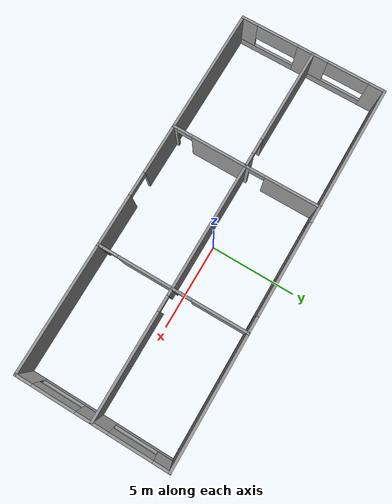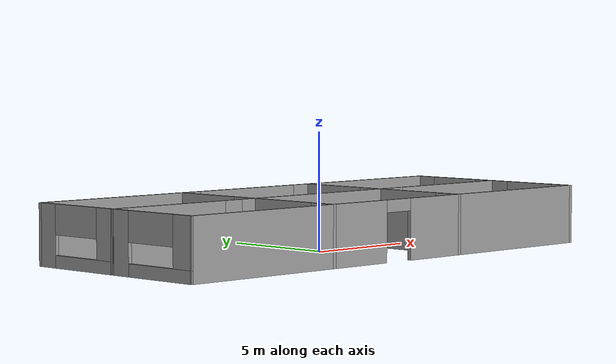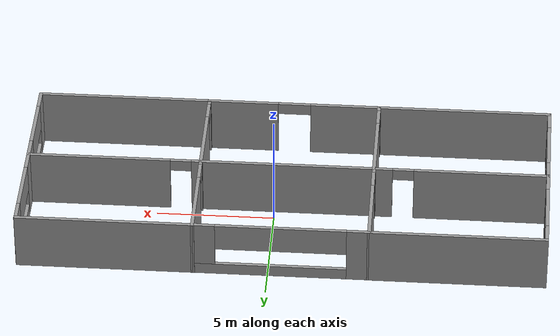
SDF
<?xml version='1.0'?>
<sdf version='1.7'>
  <model name='indoor_outdoor'>
    <pose>-0.530328 -0.539935 0 0 -0 0</pose>
    <link name='Wall_0'>
      <pose>-3.66967 -2.17507 0 0 -0 1.5708</pose>
      <visual name='Wall_0_Visual_0'>
        <pose>-2.09581 0 1.25 0 -0 0</pose>
        <geometry>
          <box>
            <size>0.308373 0.15 2.5</size>
          </box>
        </geometry>
        <material>
          <script>
            <uri>file://media/materials/scripts/gazebo.material</uri>
            <name>Gazebo/Grey</name>
          </script>
          <ambient>1 1 1 1</ambient>
        </material>
        <meta>
          <layer>0</layer>
        </meta>
      </visual>
      <collision name='Wall_0_Collision_0'>
        <geometry>
          <box>
            <size>0.308373 0.15 2.5</size>
          </box>
        </geometry>
        <pose>-2.09581 0 1.25 0 -0 0</pose>
      </collision>
      <visual name='Wall_0_Visual_1'>
        <pose>0.604187 0 1.25 0 -0 0</pose>
        <geometry>
          <box>
            <size>3.29163 0.15 2.5</size>
          </box>
        </geometry>
        <material>
          <script>
            <uri>file://media/materials/scripts/gazebo.material</uri>
            <name>Gazebo/Grey</name>
          </script>
          <ambient>1 1 1 1</ambient>
        </material>
        <meta>
          <layer>0</layer>
        </meta>
      </visual>
      <collision name='Wall_0_Collision_1'>
        <geometry>
          <box>
            <size>3.29163 0.15 2.5</size>
          </box>
        </geometry>
        <pose>0.604187 0 1.25 0 -0 0</pose>
      </collision>
      <visual name='Wall_0_Visual_2'>
        <pose>-1.49163 0 2.25 0 -0 0</pose>
        <geometry>
          <box>
            <size>0.9 0.15 0.5</size>
          </box>
        </geometry>
        <material>
          <script>
            <uri>file://media/materials/scripts/gazebo.material</uri>
            <name>Gazebo/Grey</name>
          </script>
          <ambient>1 1 1 1</ambient>
        </material>
        <meta>
          <layer>0</layer>
        </meta>
      </visual>
      <collision name='Wall_0_Collision_2'>
        <geometry>
          <box>
            <size>0.9 0.15 0.5</size>
          </box>
        </geometry>
        <pose>-1.49163 0 2.25 0 -0 0</pose>
      </collision>
    </link>
    <link name='Wall_1'>
      <collision name='Wall_1_Collision'>
        <geometry>
          <box>
            <size>7.5 0.15 2.5</size>
          </box>
        </geometry>
        <pose>0 0 1.25 0 -0 0</pose>
      </collision>
      <visual name='Wall_1_Visual'>
        <pose>0 0 1.25 0 -0 0</pose>
        <geometry>
          <box>
            <size>7.5 0.15 2.5</size>
          </box>
        </geometry>
        <material>
          <script>
            <uri>file://media/materials/scripts/gazebo.material</uri>
            <name>Gazebo/Grey</name>
          </script>
          <ambient>1 1 1 1</ambient>
        </material>
        <meta>
          <layer>0</layer>
        </meta>
      </visual>
      <pose>0.005328 -6.5e-05 0 0 -0 0</pose>
    </link>
    <link name='Wall_10'>
      <pose>3.67133 2.17494 0 0 -0 -1.56666</pose>
      <visual name='Wall_10_Visual_0'>
        <pose>-0.595223 0 1.25 0 -0 0</pose>
        <geometry>
          <box>
            <size>3.30959 0.15 2.5</size>
          </box>
        </geometry>
        <material>
          <script>
            <uri>file://media/materials/scripts/gazebo.material</uri>
            <name>Gazebo/Grey</name>
          </script>
          <ambient>1 1 1 1</ambient>
        </material>
        <meta>
          <layer>0</layer>
        </meta>
      </visual>
      <collision name='Wall_10_Collision_0'>
        <geometry>
          <box>
            <size>3.30959 0.15 2.5</size>
          </box>
        </geometry>
        <pose>-0.595223 0 1.25 0 -0 0</pose>
      </collision>
      <visual name='Wall_10_Visual_1'>
        <pose>2.1048 0 1.25 0 -0 0</pose>
        <geometry>
          <box>
            <size>0.290445 0.15 2.5</size>
          </box>
        </geometry>
        <material>
          <script>
            <uri>file://media/materials/scripts/gazebo.material</uri>
            <name>Gazebo/Grey</name>
          </script>
          <ambient>1 1 1 1</ambient>
        </material>
        <meta>
          <layer>0</layer>
        </meta>
      </visual>
      <collision name='Wall_10_Collision_1'>
        <geometry>
          <box>
            <size>0.290445 0.15 2.5</size>
          </box>
        </geometry>
        <pose>2.1048 0 1.25 0 -0 0</pose>
      </collision>
      <visual name='Wall_10_Visual_2'>
        <pose>1.50957 0 2.25 0 -0 0</pose>
        <geometry>
          <box>
            <size>0.9 0.15 0.5</size>
          </box>
        </geometry>
        <material>
          <script>
            <uri>file://media/materials/scripts/gazebo.material</uri>
            <name>Gazebo/Grey</name>
          </script>
          <ambient>1 1 1 1</ambient>
        </material>
        <meta>
          <layer>0</layer>
        </meta>
      </visual>
      <collision name='Wall_10_Collision_2'>
        <geometry>
          <box>
            <size>0.9 0.15 0.5</size>
          </box>
        </geometry>
        <pose>1.50957 0 2.25 0 -0 0</pose>
      </collision>
    </link>
    <link name='Wall_12'>
      <pose>7.35533 -6.5e-05 0 0 -0 0</pose>
      <visual name='Wall_12_Visual_0'>
        <pose>-3.50953 0 1.25 0 -0 0</pose>
        <geometry>
          <box>
            <size>0.48094 0.15 2.5</size>
          </box>
        </geometry>
        <material>
          <script>
            <uri>file://media/materials/scripts/gazebo.material</uri>
            <name>Gazebo/Grey</name>
          </script>
          <ambient>1 1 1 1</ambient>
        </material>
        <meta>
          <layer>0</layer>
        </meta>
      </visual>
      <collision name='Wall_12_Collision_0'>
        <geometry>
          <box>
            <size>0.48094 0.15 2.5</size>
          </box>
        </geometry>
        <pose>-3.50953 0 1.25 0 -0 0</pose>
      </collision>
      <visual name='Wall_12_Visual_1'>
        <pose>0.69047 0 1.25 0 -0 0</pose>
        <geometry>
          <box>
            <size>6.11906 0.15 2.5</size>
          </box>
        </geometry>
        <material>
          <script>
            <uri>file://media/materials/scripts/gazebo.material</uri>
            <name>Gazebo/Grey</name>
          </script>
          <ambient>1 1 1 1</ambient>
        </material>
        <meta>
          <layer>0</layer>
        </meta>
      </visual>
      <collision name='Wall_12_Collision_1'>
        <geometry>
          <box>
            <size>6.11906 0.15 2.5</size>
          </box>
        </geometry>
        <pose>0.69047 0 1.25 0 -0 0</pose>
      </collision>
      <visual name='Wall_12_Visual_2'>
        <pose>-2.81906 0 2.25 0 -0 0</pose>
        <geometry>
          <box>
            <size>0.9 0.15 0.5</size>
          </box>
        </geometry>
        <material>
          <script>
            <uri>file://media/materials/scripts/gazebo.material</uri>
            <name>Gazebo/Grey</name>
          </script>
          <ambient>1 1 1 1</ambient>
        </material>
        <meta>
          <layer>0</layer>
        </meta>
      </visual>
      <collision name='Wall_12_Collision_2'>
        <geometry>
          <box>
            <size>0.9 0.15 0.5</size>
          </box>
        </geometry>
        <pose>-2.81906 0 2.25 0 -0 0</pose>
      </collision>
    </link>
    <link name='Wall_13'>
      <pose>11.0303 2.17494 0 0 -0 1.5708</pose>
      <visual name='Wall_13_Visual_0'>
        <pose>-1.74891 0 1.25 0 -0 0</pose>
        <geometry>
          <box>
            <size>1.00217 0.15 2.5</size>
          </box>
        </geometry>
        <material>
          <script>
            <uri>file://media/materials/scripts/gazebo.material</uri>
            <name>Gazebo/Grey</name>
          </script>
          <ambient>1 1 1 1</ambient>
        </material>
        <meta>
          <layer>0</layer>
        </meta>
      </visual>
      <collision name='Wall_13_Collision_0'>
        <geometry>
          <box>
            <size>1.00217 0.15 2.5</size>
          </box>
        </geometry>
        <pose>-1.74891 0 1.25 0 -0 0</pose>
      </collision>
      <visual name='Wall_13_Visual_1'>
        <pose>0.501087 0 0.25 0 -0 0</pose>
        <geometry>
          <box>
            <size>3.49783 0.15 0.5</size>
          </box>
        </geometry>
        <material>
          <script>
            <uri>file://media/materials/scripts/gazebo.material</uri>
            <name>Gazebo/Grey</name>
          </script>
          <ambient>1 1 1 1</ambient>
        </material>
        <meta>
          <layer>0</layer>
        </meta>
      </visual>
      <collision name='Wall_13_Collision_1'>
        <geometry>
          <box>
            <size>3.49783 0.15 0.5</size>
          </box>
        </geometry>
        <pose>0.501087 0 0.25 0 -0 0</pose>
      </collision>
      <visual name='Wall_13_Visual_2'>
        <pose>1.74331 0 1.5 0 -0 0</pose>
        <geometry>
          <box>
            <size>1.01339 0.15 2</size>
          </box>
        </geometry>
        <material>
          <script>
            <uri>file://media/materials/scripts/gazebo.material</uri>
            <name>Gazebo/Grey</name>
          </script>
          <ambient>1 1 1 1</ambient>
        </material>
        <meta>
          <layer>0</layer>
        </meta>
      </visual>
      <collision name='Wall_13_Collision_2'>
        <geometry>
          <box>
            <size>1.01339 0.15 2</size>
          </box>
        </geometry>
        <pose>1.74331 0 1.5 0 -0 0</pose>
      </collision>
      <visual name='Wall_13_Visual_3'>
        <pose>-0.005607 0 1.9 0 -0 0</pose>
        <geometry>
          <box>
            <size>2.48444 0.15 1.2</size>
          </box>
        </geometry>
        <material>
          <script>
            <uri>file://media/materials/scripts/gazebo.material</uri>
            <name>Gazebo/Grey</name>
          </script>
          <ambient>1 1 1 1</ambient>
        </material>
        <meta>
          <layer>0</layer>
        </meta>
      </visual>
      <collision name='Wall_13_Collision_3'>
        <geometry>
          <box>
            <size>2.48444 0.15 1.2</size>
          </box>
        </geometry>
        <pose>-0.005607 0 1.9 0 -0 0</pose>
      </collision>
    </link>
    <link name='Wall_14'>
      <collision name='Wall_14_Collision'>
        <geometry>
          <box>
            <size>7.51805 0.15 2.5</size>
          </box>
        </geometry>
        <pose>0 0 1.25 0 -0 0</pose>
      </collision>
      <visual name='Wall_14_Visual'>
        <pose>0 0 1.25 0 -0 0</pose>
        <geometry>
          <box>
            <size>7.51805 0.15 2.5</size>
          </box>
        </geometry>
        <material>
          <script>
            <uri>file://media/materials/scripts/gazebo.material</uri>
            <name>Gazebo/Grey</name>
          </script>
          <ambient>1 1 1 1</ambient>
        </material>
        <meta>
          <layer>0</layer>
        </meta>
      </visual>
      <pose>7.34633 4.34994 0 0 -0 -3.14159</pose>
    </link>
    <link name='Wall_16'>
      <collision name='Wall_16_Collision'>
        <geometry>
          <box>
            <size>7.49252 0.15 2.5</size>
          </box>
        </geometry>
        <pose>0 0 1.25 0 -0 0</pose>
      </collision>
      <visual name='Wall_16_Visual'>
        <pose>0 0 1.25 0 -0 0</pose>
        <geometry>
          <box>
            <size>7.49252 0.15 2.5</size>
          </box>
        </geometry>
        <material>
          <script>
            <uri>file://media/materials/scripts/gazebo.material</uri>
            <name>Gazebo/Grey</name>
          </script>
          <ambient>1 1 1 1</ambient>
        </material>
        <meta>
          <layer>0</layer>
        </meta>
      </visual>
      <pose>-7.35891 4.34994 0 0 -0 3.14159</pose>
    </link>
    <link name='Wall_18'>
      <pose>-11.0301 2.17494 0 0 -0 -1.5708</pose>
      <visual name='Wall_18_Visual_0'>
        <pose>-1.73743 0 1.25 0 -0 0</pose>
        <geometry>
          <box>
            <size>1.00419 0.15 2.5</size>
          </box>
        </geometry>
        <material>
          <script>
            <uri>file://media/materials/scripts/gazebo.material</uri>
            <name>Gazebo/Grey</name>
          </script>
          <ambient>1 1 1 1</ambient>
        </material>
        <meta>
          <layer>0</layer>
        </meta>
      </visual>
      <collision name='Wall_18_Collision_0'>
        <geometry>
          <box>
            <size>1.00419 0.15 2.5</size>
          </box>
        </geometry>
        <pose>-1.73743 0 1.25 0 -0 0</pose>
      </collision>
      <visual name='Wall_18_Visual_1'>
        <pose>0.502097 0 0.25 0 -0 0</pose>
        <geometry>
          <box>
            <size>3.47487 0.15 0.5</size>
          </box>
        </geometry>
        <material>
          <script>
            <uri>file://media/materials/scripts/gazebo.material</uri>
            <name>Gazebo/Grey</name>
          </script>
          <ambient>1 1 1 1</ambient>
        </material>
        <meta>
          <layer>0</layer>
        </meta>
      </visual>
      <collision name='Wall_18_Collision_1'>
        <geometry>
          <box>
            <size>3.47487 0.15 0.5</size>
          </box>
        </geometry>
        <pose>0.502097 0 0.25 0 -0 0</pose>
      </collision>
      <visual name='Wall_18_Visual_2'>
        <pose>1.7396 0 1.5 0 -0 0</pose>
        <geometry>
          <box>
            <size>0.999862 0.15 2</size>
          </box>
        </geometry>
        <material>
          <script>
            <uri>file://media/materials/scripts/gazebo.material</uri>
            <name>Gazebo/Grey</name>
          </script>
          <ambient>1 1 1 1</ambient>
        </material>
        <meta>
          <layer>0</layer>
        </meta>
      </visual>
      <collision name='Wall_18_Collision_2'>
        <geometry>
          <box>
            <size>0.999862 0.15 2</size>
          </box>
        </geometry>
        <pose>1.7396 0 1.5 0 -0 0</pose>
      </collision>
      <visual name='Wall_18_Visual_3'>
        <pose>0.002166 0 1.9 0 -0 0</pose>
        <geometry>
          <box>
            <size>2.47501 0.15 1.2</size>
          </box>
        </geometry>
        <material>
          <script>
            <uri>file://media/materials/scripts/gazebo.material</uri>
            <name>Gazebo/Grey</name>
          </script>
          <ambient>1 1 1 1</ambient>
        </material>
        <meta>
          <layer>0</layer>
        </meta>
      </visual>
      <collision name='Wall_18_Collision_3'>
        <geometry>
          <box>
            <size>2.47501 0.15 1.2</size>
          </box>
        </geometry>
        <pose>0.002166 0 1.9 0 -0 0</pose>
      </collision>
    </link>
    <link name='Wall_19'>
      <pose>-7.34467 0.010404 0 0 -0 -0.002841</pose>
      <visual name='Wall_19_Visual_0'>
        <pose>-0.887491 0 1.25 0 -0 0</pose>
        <geometry>
          <box>
            <size>5.74599 0.15 2.5</size>
          </box>
        </geometry>
        <material>
          <script>
            <uri>file://media/materials/scripts/gazebo.material</uri>
            <name>Gazebo/Grey</name>
          </script>
          <ambient>1 1 1 1</ambient>
        </material>
        <meta>
          <layer>0</layer>
        </meta>
      </visual>
      <collision name='Wall_19_Collision_0'>
        <geometry>
          <box>
            <size>5.74599 0.15 2.5</size>
          </box>
        </geometry>
        <pose>-0.887491 0 1.25 0 -0 0</pose>
      </collision>
      <visual name='Wall_19_Visual_1'>
        <pose>3.32299 0 1.25 0 -0 0</pose>
        <geometry>
          <box>
            <size>0.874982 0.15 2.5</size>
          </box>
        </geometry>
        <material>
          <script>
            <uri>file://media/materials/scripts/gazebo.material</uri>
            <name>Gazebo/Grey</name>
          </script>
          <ambient>1 1 1 1</ambient>
        </material>
        <meta>
          <layer>0</layer>
        </meta>
      </visual>
      <collision name='Wall_19_Collision_1'>
        <geometry>
          <box>
            <size>0.874982 0.15 2.5</size>
          </box>
        </geometry>
        <pose>3.32299 0 1.25 0 -0 0</pose>
      </collision>
      <visual name='Wall_19_Visual_2'>
        <pose>2.4355 0 2.25 0 -0 0</pose>
        <geometry>
          <box>
            <size>0.9 0.15 0.5</size>
          </box>
        </geometry>
        <material>
          <script>
            <uri>file://media/materials/scripts/gazebo.material</uri>
            <name>Gazebo/Grey</name>
          </script>
          <ambient>1 1 1 1</ambient>
        </material>
        <meta>
          <layer>0</layer>
        </meta>
      </visual>
      <collision name='Wall_19_Collision_2'>
        <geometry>
          <box>
            <size>0.9 0.15 0.5</size>
          </box>
        </geometry>
        <pose>2.4355 0 2.25 0 -0 0</pose>
      </collision>
    </link>
    <link name='Wall_2'>
      <pose>3.68033 -2.17507 0 0 -0 -1.5708</pose>
      <visual name='Wall_2_Visual_0'>
        <pose>-0.621941 0 1.25 0 -0 0</pose>
        <geometry>
          <box>
            <size>3.25612 0.15 2.5</size>
          </box>
        </geometry>
        <material>
          <script>
            <uri>file://media/materials/scripts/gazebo.material</uri>
            <name>Gazebo/Grey</name>
          </script>
          <ambient>1 1 1 1</ambient>
        </material>
        <meta>
          <layer>0</layer>
        </meta>
      </visual>
      <collision name='Wall_2_Collision_0'>
        <geometry>
          <box>
            <size>3.25612 0.15 2.5</size>
          </box>
        </geometry>
        <pose>-0.621941 0 1.25 0 -0 0</pose>
      </collision>
      <visual name='Wall_2_Visual_1'>
        <pose>2.07806 0 1.25 0 -0 0</pose>
        <geometry>
          <box>
            <size>0.343882 0.15 2.5</size>
          </box>
        </geometry>
        <material>
          <script>
            <uri>file://media/materials/scripts/gazebo.material</uri>
            <name>Gazebo/Grey</name>
          </script>
          <ambient>1 1 1 1</ambient>
        </material>
        <meta>
          <layer>0</layer>
        </meta>
      </visual>
      <collision name='Wall_2_Collision_1'>
        <geometry>
          <box>
            <size>0.343882 0.15 2.5</size>
          </box>
        </geometry>
        <pose>2.07806 0 1.25 0 -0 0</pose>
      </collision>
      <visual name='Wall_2_Visual_2'>
        <pose>1.45612 0 2.25 0 -0 0</pose>
        <geometry>
          <box>
            <size>0.9 0.15 0.5</size>
          </box>
        </geometry>
        <material>
          <script>
            <uri>file://media/materials/scripts/gazebo.material</uri>
            <name>Gazebo/Grey</name>
          </script>
          <ambient>1 1 1 1</ambient>
        </material>
        <meta>
          <layer>0</layer>
        </meta>
      </visual>
      <collision name='Wall_2_Collision_2'>
        <geometry>
          <box>
            <size>0.9 0.15 0.5</size>
          </box>
        </geometry>
        <pose>1.45612 0 2.25 0 -0 0</pose>
      </collision>
    </link>
    <link name='Wall_21'>
      <pose>-11.0249 -2.1646 0 0 -0 -1.5684</pose>
      <visual name='Wall_21_Visual_0'>
        <pose>-1.75213 0 1.25 0 -0 0</pose>
        <geometry>
          <box>
            <size>1.01669 0.15 2.5</size>
          </box>
        </geometry>
        <material>
          <script>
            <uri>file://media/materials/scripts/gazebo.material</uri>
            <name>Gazebo/Grey</name>
          </script>
          <ambient>1 1 1 1</ambient>
        </material>
        <meta>
          <layer>0</layer>
        </meta>
      </visual>
      <collision name='Wall_21_Collision_0'>
        <geometry>
          <box>
            <size>1.01669 0.15 2.5</size>
          </box>
        </geometry>
        <pose>-1.75213 0 1.25 0 -0 0</pose>
      </collision>
      <visual name='Wall_21_Visual_1'>
        <pose>0.508344 0 0.25 0 -0 0</pose>
        <geometry>
          <box>
            <size>3.50426 0.15 0.5</size>
          </box>
        </geometry>
        <material>
          <script>
            <uri>file://media/materials/scripts/gazebo.material</uri>
            <name>Gazebo/Grey</name>
          </script>
          <ambient>1 1 1 1</ambient>
        </material>
        <meta>
          <layer>0</layer>
        </meta>
      </visual>
      <collision name='Wall_21_Collision_1'>
        <geometry>
          <box>
            <size>3.50426 0.15 0.5</size>
          </box>
        </geometry>
        <pose>0.508344 0 0.25 0 -0 0</pose>
      </collision>
      <visual name='Wall_21_Visual_2'>
        <pose>1.7522 0 1.5 0 -0 0</pose>
        <geometry>
          <box>
            <size>1.01656 0.15 2</size>
          </box>
        </geometry>
        <material>
          <script>
            <uri>file://media/materials/scripts/gazebo.material</uri>
            <name>Gazebo/Grey</name>
          </script>
          <ambient>1 1 1 1</ambient>
        </material>
        <meta>
          <layer>0</layer>
        </meta>
      </visual>
      <collision name='Wall_21_Collision_2'>
        <geometry>
          <box>
            <size>1.01656 0.15 2</size>
          </box>
        </geometry>
        <pose>1.7522 0 1.5 0 -0 0</pose>
      </collision>
      <visual name='Wall_21_Visual_3'>
        <pose>6.5e-05 0 1.9 0 -0 0</pose>
        <geometry>
          <box>
            <size>2.4877 0.15 1.2</size>
          </box>
        </geometry>
        <material>
          <script>
            <uri>file://media/materials/scripts/gazebo.material</uri>
            <name>Gazebo/Grey</name>
          </script>
          <ambient>1 1 1 1</ambient>
        </material>
        <meta>
          <layer>0</layer>
        </meta>
      </visual>
      <collision name='Wall_21_Collision_3'>
        <geometry>
          <box>
            <size>2.4877 0.15 1.2</size>
          </box>
        </geometry>
        <pose>6.5e-05 0 1.9 0 -0 0</pose>
      </collision>
    </link>
    <link name='Wall_22'>
      <collision name='Wall_22_Collision'>
        <geometry>
          <box>
            <size>7.5 0.15 2.5</size>
          </box>
        </geometry>
        <pose>0 0 1.25 0 -0 0</pose>
      </collision>
      <visual name='Wall_22_Visual'>
        <pose>0 0 1.25 0 -0 0</pose>
        <geometry>
          <box>
            <size>7.5 0.15 2.5</size>
          </box>
        </geometry>
        <material>
          <script>
            <uri>file://media/materials/scripts/gazebo.material</uri>
            <name>Gazebo/Grey</name>
          </script>
          <ambient>1 1 1 1</ambient>
        </material>
        <meta>
          <layer>0</layer>
        </meta>
      </visual>
      <pose>-7.34467 -4.35006 0 0 -0 0</pose>
    </link>
    <link name='Wall_24'>
      <collision name='Wall_24_Collision'>
        <geometry>
          <box>
            <size>7.5 0.15 2.5</size>
          </box>
        </geometry>
        <pose>0 0 1.25 0 -0 0</pose>
      </collision>
      <visual name='Wall_24_Visual'>
        <pose>0 0 1.25 0 -0 0</pose>
        <geometry>
          <box>
            <size>7.5 0.15 2.5</size>
          </box>
        </geometry>
        <material>
          <script>
            <uri>file://media/materials/scripts/gazebo.material</uri>
            <name>Gazebo/Grey</name>
          </script>
          <ambient>1 1 1 1</ambient>
        </material>
        <meta>
          <layer>0</layer>
        </meta>
      </visual>
      <pose>7.35533 -4.35006 0 0 -0 0</pose>
    </link>
    <link name='Wall_25'>
      <pose>11.0303 -2.17507 0 0 -0 1.5708</pose>
      <visual name='Wall_25_Visual_0'>
        <pose>-1.74696 0 1.25 0 -0 0</pose>
        <geometry>
          <box>
            <size>1.00608 0.15 2.5</size>
          </box>
        </geometry>
        <material>
          <script>
            <uri>file://media/materials/scripts/gazebo.material</uri>
            <name>Gazebo/Grey</name>
          </script>
          <ambient>1 1 1 1</ambient>
        </material>
        <meta>
          <layer>0</layer>
        </meta>
      </visual>
      <collision name='Wall_25_Collision_0'>
        <geometry>
          <box>
            <size>1.00608 0.15 2.5</size>
          </box>
        </geometry>
        <pose>-1.74696 0 1.25 0 -0 0</pose>
      </collision>
      <visual name='Wall_25_Visual_1'>
        <pose>0.503042 0 0.25 0 -0 0</pose>
        <geometry>
          <box>
            <size>3.49392 0.15 0.5</size>
          </box>
        </geometry>
        <material>
          <script>
            <uri>file://media/materials/scripts/gazebo.material</uri>
            <name>Gazebo/Grey</name>
          </script>
          <ambient>1 1 1 1</ambient>
        </material>
        <meta>
          <layer>0</layer>
        </meta>
      </visual>
      <collision name='Wall_25_Collision_1'>
        <geometry>
          <box>
            <size>3.49392 0.15 0.5</size>
          </box>
        </geometry>
        <pose>0.503042 0 0.25 0 -0 0</pose>
      </collision>
      <visual name='Wall_25_Visual_2'>
        <pose>1.74689 0 1.5 0 -0 0</pose>
        <geometry>
          <box>
            <size>1.00621 0.15 2</size>
          </box>
        </geometry>
        <material>
          <script>
            <uri>file://media/materials/scripts/gazebo.material</uri>
            <name>Gazebo/Grey</name>
          </script>
          <ambient>1 1 1 1</ambient>
        </material>
        <meta>
          <layer>0</layer>
        </meta>
      </visual>
      <collision name='Wall_25_Collision_2'>
        <geometry>
          <box>
            <size>1.00621 0.15 2</size>
          </box>
        </geometry>
        <pose>1.74689 0 1.5 0 -0 0</pose>
      </collision>
      <visual name='Wall_25_Visual_3'>
        <pose>-6.5e-05 0 1.9 0 -0 0</pose>
        <geometry>
          <box>
            <size>2.4877 0.15 1.2</size>
          </box>
        </geometry>
        <material>
          <script>
            <uri>file://media/materials/scripts/gazebo.material</uri>
            <name>Gazebo/Grey</name>
          </script>
          <ambient>1 1 1 1</ambient>
        </material>
        <meta>
          <layer>0</layer>
        </meta>
      </visual>
      <collision name='Wall_25_Collision_3'>
        <geometry>
          <box>
            <size>2.4877 0.15 1.2</size>
          </box>
        </geometry>
        <pose>-6.5e-05 0 1.9 0 -0 0</pose>
      </collision>
    </link>
    <link name='Wall_27'>
      <pose>0.005328 -4.35006 0 0 -0 0</pose>
      <visual name='Wall_27_Visual_0'>
        <pose>-2.22984 0 1.25 0 -0 0</pose>
        <geometry>
          <box>
            <size>3.04032 0.15 2.5</size>
          </box>
        </geometry>
        <material>
          <script>
            <uri>file://media/materials/scripts/gazebo.material</uri>
            <name>Gazebo/Grey</name>
          </script>
          <ambient>1 1 1 1</ambient>
        </material>
        <meta>
          <layer>0</layer>
        </meta>
      </visual>
      <collision name='Wall_27_Collision_0'>
        <geometry>
          <box>
            <size>3.04032 0.15 2.5</size>
          </box>
        </geometry>
        <pose>-2.22984 0 1.25 0 -0 0</pose>
      </collision>
      <visual name='Wall_27_Visual_1'>
        <pose>2.21718 0 1.25 0 -0 0</pose>
        <geometry>
          <box>
            <size>3.06564 0.15 2.5</size>
          </box>
        </geometry>
        <material>
          <script>
            <uri>file://media/materials/scripts/gazebo.material</uri>
            <name>Gazebo/Grey</name>
          </script>
          <ambient>1 1 1 1</ambient>
        </material>
        <meta>
          <layer>0</layer>
        </meta>
      </visual>
      <collision name='Wall_27_Collision_1'>
        <geometry>
          <box>
            <size>3.06564 0.15 2.5</size>
          </box>
        </geometry>
        <pose>2.21718 0 1.25 0 -0 0</pose>
      </collision>
      <visual name='Wall_27_Visual_2'>
        <pose>-0.012663 0 2.25 0 -0 0</pose>
        <geometry>
          <box>
            <size>1.39404 0.15 0.5</size>
          </box>
        </geometry>
        <material>
          <script>
            <uri>file://media/materials/scripts/gazebo.material</uri>
            <name>Gazebo/Grey</name>
          </script>
          <ambient>1 1 1 1</ambient>
        </material>
        <meta>
          <layer>0</layer>
        </meta>
      </visual>
      <collision name='Wall_27_Collision_2'>
        <geometry>
          <box>
            <size>1.39404 0.15 0.5</size>
          </box>
        </geometry>
        <pose>-0.012663 0 2.25 0 -0 0</pose>
      </collision>
    </link>
    <link name='Wall_8'>
      <pose>-3.67867 2.17494 0 0 -0 1.57493</pose>
      <visual name='Wall_8_Visual_0'>
        <pose>-2.08715 0 1.25 0 -0 0</pose>
        <geometry>
          <box>
            <size>0.325735 0.15 2.5</size>
          </box>
        </geometry>
        <material>
          <script>
            <uri>file://media/materials/scripts/gazebo.material</uri>
            <name>Gazebo/Grey</name>
          </script>
          <ambient>1 1 1 1</ambient>
        </material>
        <meta>
          <layer>0</layer>
        </meta>
      </visual>
      <collision name='Wall_8_Collision_0'>
        <geometry>
          <box>
            <size>0.325735 0.15 2.5</size>
          </box>
        </geometry>
        <pose>-2.08715 0 1.25 0 -0 0</pose>
      </collision>
      <visual name='Wall_8_Visual_1'>
        <pose>0.612867 0 1.25 0 -0 0</pose>
        <geometry>
          <box>
            <size>3.2743 0.15 2.5</size>
          </box>
        </geometry>
        <material>
          <script>
            <uri>file://media/materials/scripts/gazebo.material</uri>
            <name>Gazebo/Grey</name>
          </script>
          <ambient>1 1 1 1</ambient>
        </material>
        <meta>
          <layer>0</layer>
        </meta>
      </visual>
      <collision name='Wall_8_Collision_1'>
        <geometry>
          <box>
            <size>3.2743 0.15 2.5</size>
          </box>
        </geometry>
        <pose>0.612867 0 1.25 0 -0 0</pose>
      </collision>
      <visual name='Wall_8_Visual_2'>
        <pose>-1.47428 0 2.25 0 -0 0</pose>
        <geometry>
          <box>
            <size>0.9 0.15 0.5</size>
          </box>
        </geometry>
        <material>
          <script>
            <uri>file://media/materials/scripts/gazebo.material</uri>
            <name>Gazebo/Grey</name>
          </script>
          <ambient>1 1 1 1</ambient>
        </material>
        <meta>
          <layer>0</layer>
        </meta>
      </visual>
      <collision name='Wall_8_Collision_2'>
        <geometry>
          <box>
            <size>0.9 0.15 0.5</size>
          </box>
        </geometry>
        <pose>-1.47428 0 2.25 0 -0 0</pose>
      </collision>
    </link>
    <link name='Wall_9'>
      <pose>-0.012673 4.34093 0 0 -0 0</pose>
      <visual name='Wall_9_Visual_0'>
        <pose>-3.24656 0 1.25 0 -0 0</pose>
        <geometry>
          <box>
            <size>1.00688 0.15 2.5</size>
          </box>
        </geometry>
        <material>
          <script>
            <uri>file://media/materials/scripts/gazebo.material</uri>
            <name>Gazebo/Grey</name>
          </script>
          <ambient>1 1 1 1</ambient>
        </material>
        <meta>
          <layer>0</layer>
        </meta>
      </visual>
      <collision name='Wall_9_Collision_0'>
        <geometry>
          <box>
            <size>1.00688 0.15 2.5</size>
          </box>
        </geometry>
        <pose>-3.24656 0 1.25 0 -0 0</pose>
      </collision>
      <visual name='Wall_9_Visual_1'>
        <pose>0.503438 0 0.25 0 -0 0</pose>
        <geometry>
          <box>
            <size>6.49312 0.15 0.5</size>
          </box>
        </geometry>
        <material>
          <script>
            <uri>file://media/materials/scripts/gazebo.material</uri>
            <name>Gazebo/Grey</name>
          </script>
          <ambient>1 1 1 1</ambient>
        </material>
        <meta>
          <layer>0</layer>
        </meta>
      </visual>
      <collision name='Wall_9_Collision_1'>
        <geometry>
          <box>
            <size>6.49312 0.15 0.5</size>
          </box>
        </geometry>
        <pose>0.503438 0 0.25 0 -0 0</pose>
      </collision>
      <visual name='Wall_9_Visual_2'>
        <pose>3.24364 0 1.5 0 -0 0</pose>
        <geometry>
          <box>
            <size>1.01272 0.15 2</size>
          </box>
        </geometry>
        <material>
          <script>
            <uri>file://media/materials/scripts/gazebo.material</uri>
            <name>Gazebo/Grey</name>
          </script>
          <ambient>1 1 1 1</ambient>
        </material>
        <meta>
          <layer>0</layer>
        </meta>
      </visual>
      <collision name='Wall_9_Collision_2'>
        <geometry>
          <box>
            <size>1.01272 0.15 2</size>
          </box>
        </geometry>
        <pose>3.24364 0 1.5 0 -0 0</pose>
      </collision>
      <visual name='Wall_9_Visual_3'>
        <pose>-0.00292 0 1.9 0 -0 0</pose>
        <geometry>
          <box>
            <size>5.48041 0.15 1.2</size>
          </box>
        </geometry>
        <material>
          <script>
            <uri>file://media/materials/scripts/gazebo.material</uri>
            <name>Gazebo/Grey</name>
          </script>
          <ambient>1 1 1 1</ambient>
        </material>
        <meta>
          <layer>0</layer>
        </meta>
      </visual>
      <collision name='Wall_9_Collision_3'>
        <geometry>
          <box>
            <size>5.48041 0.15 1.2</size>
          </box>
        </geometry>
        <pose>-0.00292 0 1.9 0 -0 0</pose>
      </collision>
    </link>
    <static>1</static>
  </model>
</sdf>
